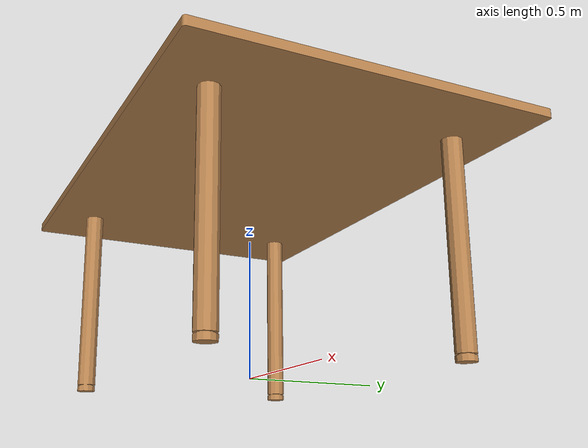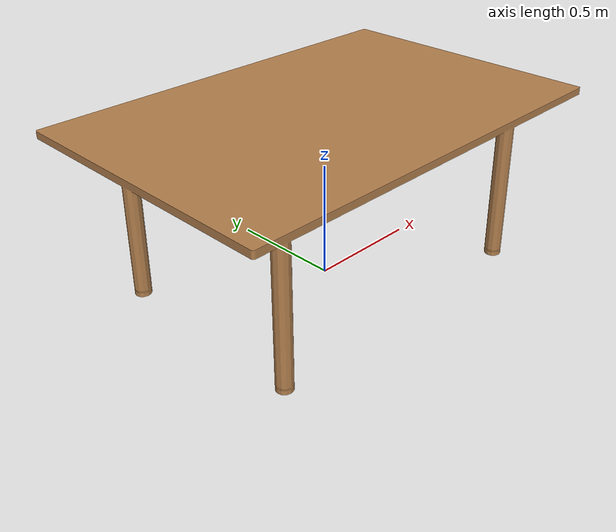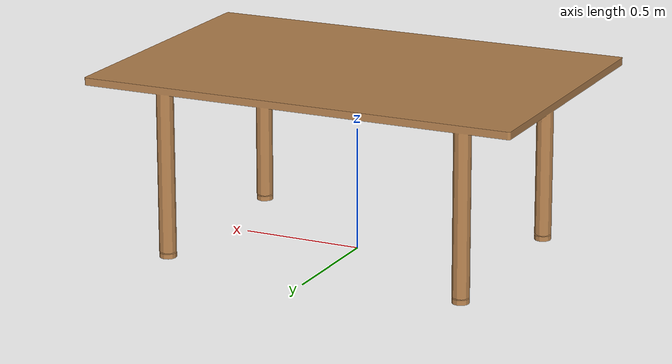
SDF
<sdf version='1.7'>
  <model name='Officedesk_C'>
    <link name='Officedesk_C'>
      <inertial>
        <pose>-0 0 0.68486 0 -0 0</pose>
        <mass>75.92</mass>
        <inertia>
          <ixx>11.621</ixx>
          <ixy>4.4705e-14</ixy>
          <ixz>6.4255e-15</ixz>
          <iyy>23.852</iyy>
          <iyz>-8.0575e-16</iyz>
          <izz>31.805</izz>
        </inertia>
      </inertial>
      <collision name='Officedesk_C_collision'>
        <pose>0 0 0 0 -0 0</pose>
        <geometry>
          <mesh>
            <scale>1 1 1</scale>
            <uri>model://Officedesk_C/meshes/Officedesk_C.STL</uri>
          </mesh>
        </geometry>
      </collision>
      <visual name='Officedesk_C_visual'>
        <pose>0 0 0 0 -0 0</pose>
        <geometry>
          <mesh>
            <scale>1 1 1</scale>
            <uri>model://Officedesk_C/meshes/Officedesk_C.STL</uri>
          </mesh>
        </geometry>
        <material>
          <script>
            <uri>file://media/materials/scripts/gazebo.material</uri>
            <name>Gazebo/Wood</name>
          </script>
        </material>
      </visual>
    </link>
  </model>
</sdf>
